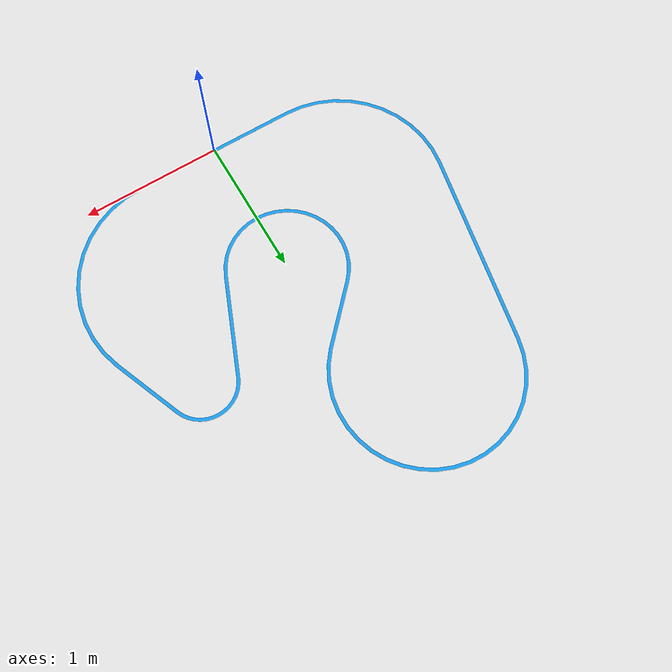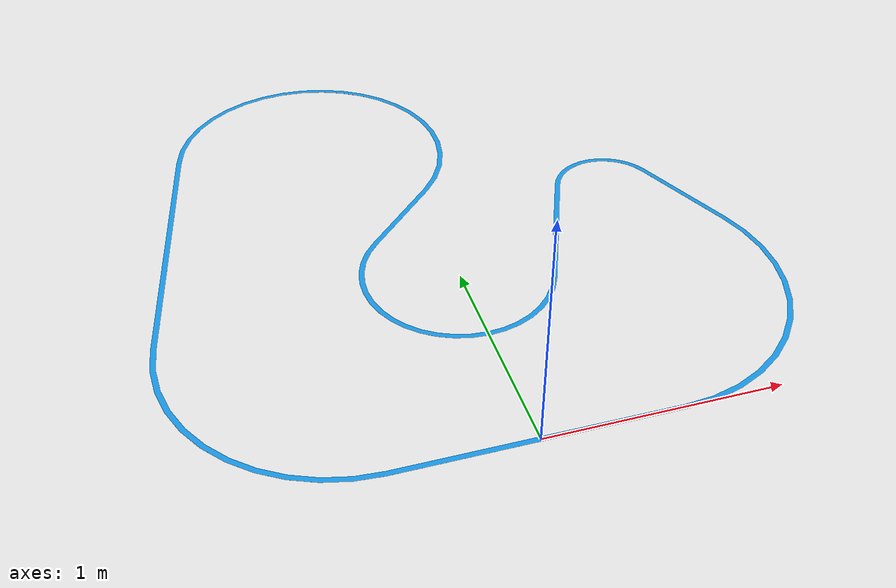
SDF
<?xml version='1.0'?>
<sdf version="1.7">
    <model name="line_follower_track">
        <pose>0 0 0 0 0 0</pose>
        <static>true</static>
        <link name="body">
            <visual name="visual">
                <geometry>
                    <mesh>
                        <uri>model://line_follower_track/meshes/blue_track.dae</uri>
                    </mesh>
                </geometry>
            </visual>
        </link>
    </model>
</sdf>
